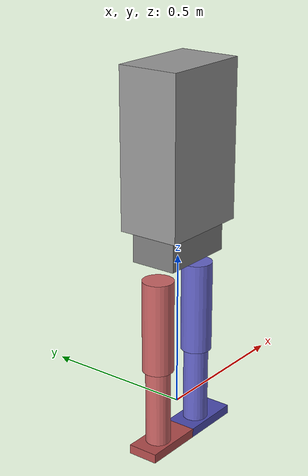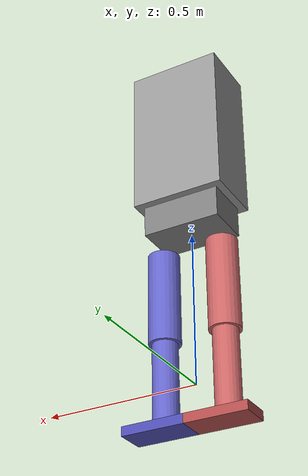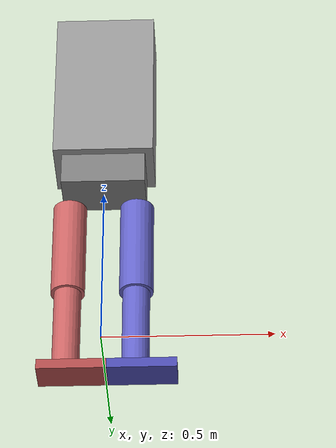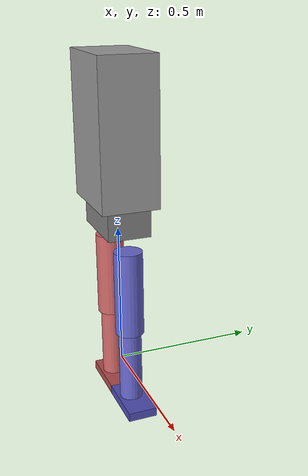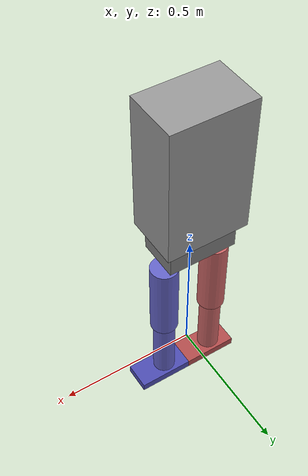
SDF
<?xml version="1.0" ?>
<sdf version="1.9">
  <model name="humanoid_stable">
    <static>false</static>
    <self_collide>false</self_collide>

    <!--
      Initial pose in world frame: X Y Z Roll Pitch Yaw
      Start slightly above ground to let physics settle
    -->
    <pose>0 0 0.85 0 0 0</pose>

    <link name="torso">
      <pose>0 0 0 0 0 0</pose>

      <inertial>
        <!--
          Mass: 20 kg (typical for humanoid torso)
          CoM placed at geometric center of torso
        -->
        <mass>20.0</mass>
        <pose>0 0 0 0 0 0</pose>
        <!--
          Inertia tensor for a box: I = (1/12) × m × (h² + d²)
          Torso dimensions: 0.3m × 0.2m × 0.5m
        -->
        <inertia>
          <ixx>0.4667</ixx>
          <ixy>0.0</ixy>
          <ixz>0.0</ixz>
          <iyy>0.5667</iyy>
          <iyz>0.0</iyz>
          <izz>0.2167</izz>
        </inertia>
      </inertial>

      <collision name="torso_collision">
        <pose>0 0 0 0 0 0</pose>
        <geometry>
          <!--
            Collision geometry: Box (simpler than visual for performance)
            Dimensions: 0.3m wide × 0.2m deep × 0.5m tall
          -->
          <box>
            <size>0.3 0.2 0.5</size>
          </box>
        </geometry>
      </collision>

      <visual name="torso_visual">
        <pose>0 0 0 0 0 0</pose>
        <geometry>
          <box>
            <size>0.3 0.2 0.5</size>
          </box>
        </geometry>
        <material>
          <!-- Gray torso -->
          <ambient>0.5 0.5 0.5 1</ambient>
          <diffuse>0.6 0.6 0.6 1</diffuse>
        </material>
      </visual>
    </link>

    <link name="pelvis">
      <pose>0 0 -0.3 0 0 0</pose>

      <inertial>
        <mass>5.0</mass>
        <pose>0 0 0 0 0 0</pose>
        <inertia>
          <ixx>0.02</ixx>
          <ixy>0.0</ixy>
          <ixz>0.0</ixz>
          <iyy>0.04</iyy>
          <iyz>0.0</iyz>
          <izz>0.04</izz>
        </inertia>
      </inertial>

      <collision name="pelvis_collision">
        <geometry>
          <box>
            <size>0.25 0.15 0.1</size>
          </box>
        </geometry>
      </collision>

      <visual name="pelvis_visual">
        <geometry>
          <box>
            <size>0.25 0.15 0.1</size>
          </box>
        </geometry>
        <material>
          <ambient>0.4 0.4 0.4 1</ambient>
          <diffuse>0.5 0.5 0.5 1</diffuse>
        </material>
      </visual>
    </link>

    <!-- Torso to Pelvis Joint (Fixed for simplicity) -->
    <joint name="torso_to_pelvis" type="fixed">
      <parent>torso</parent>
      <child>pelvis</child>
    </joint>

    <!-- Left Upper Leg (Thigh) -->
    <link name="left_upper_leg">
      <pose>0.1 0 -0.4 0 0 0</pose>

      <inertial>
        <mass>4.0</mass>
        <pose>0 0 -0.15 0 0 0</pose>  <!-- CoM at center of thigh -->
        <inertia>
          <ixx>0.04</ixx>
          <ixy>0.0</ixy>
          <ixz>0.0</ixz>
          <iyy>0.04</iyy>
          <iyz>0.0</iyz>
          <izz>0.005</izz>
        </inertia>
      </inertial>

      <collision name="left_upper_leg_collision">
        <pose>0 0 -0.15 0 0 0</pose>
        <geometry>
          <cylinder>
            <radius>0.05</radius>
            <length>0.3</length>
          </cylinder>
        </geometry>
      </collision>

      <visual name="left_upper_leg_visual">
        <pose>0 0 -0.15 0 0 0</pose>
        <geometry>
          <cylinder>
            <radius>0.05</radius>
            <length>0.3</length>
          </cylinder>
        </geometry>
        <material>
          <ambient>0.3 0.3 0.6 1</ambient>
          <diffuse>0.4 0.4 0.8 1</diffuse>
        </material>
      </visual>
    </link>

    <!-- Left Hip Joint (Pitch - forward/backward swing) -->
    <joint name="left_hip_pitch" type="revolute">
      <parent>pelvis</parent>
      <child>left_upper_leg</child>
      <pose>0 0 0.05 0 0 0</pose>  <!-- Joint at top of thigh -->
      <axis>
        <xyz>0 1 0</xyz>  <!-- Y-axis rotation (pitch) -->
        <limit>
          <!--
            Hip pitch limits:
            -60° to +30° (backward to forward swing)
          -->
          <lower>-1.05</lower>
          <upper>0.52</upper>
          <effort>100</effort>      <!-- Max torque in N·m -->
          <velocity>5.0</velocity>  <!-- Max angular velocity in rad/s -->
        </limit>
        <dynamics>
          <!--
            Damping prevents oscillation, friction adds realism
          -->
          <damping>5.0</damping>
          <friction>0.5</friction>
        </dynamics>
      </axis>
    </joint>

    <!-- Left Lower Leg (Shin) -->
    <link name="left_lower_leg">
      <pose>0.1 0 -0.7 0 0 0</pose>

      <inertial>
        <mass>3.0</mass>
        <pose>0 0 -0.125 0 0 0</pose>
        <inertia>
          <ixx>0.02</ixx>
          <ixy>0.0</ixy>
          <ixz>0.0</ixz>
          <iyy>0.02</iyy>
          <iyz>0.0</iyz>
          <izz>0.003</izz>
        </inertia>
      </inertial>

      <collision name="left_lower_leg_collision">
        <pose>0 0 -0.125 0 0 0</pose>
        <geometry>
          <cylinder>
            <radius>0.04</radius>
            <length>0.25</length>
          </cylinder>
        </geometry>
      </collision>

      <visual name="left_lower_leg_visual">
        <pose>0 0 -0.125 0 0 0</pose>
        <geometry>
          <cylinder>
            <radius>0.04</radius>
            <length>0.25</length>
          </cylinder>
        </geometry>
        <material>
          <ambient>0.3 0.3 0.6 1</ambient>
          <diffuse>0.4 0.4 0.8 1</diffuse>
        </material>
      </visual>
    </link>

    <!-- Left Knee Joint -->
    <joint name="left_knee" type="revolute">
      <parent>left_upper_leg</parent>
      <child>left_lower_leg</child>
      <pose>0 0 0.05 0 0 0</pose>
      <axis>
        <xyz>0 1 0</xyz>  <!-- Y-axis rotation (pitch) -->
        <limit>
          <!--
            Knee only bends backward (0° to -130°)
          -->
          <lower>-2.27</lower>
          <upper>0.0</upper>
          <effort>80</effort>
          <velocity>6.0</velocity>
        </limit>
        <dynamics>
          <damping>4.0</damping>
          <friction>0.3</friction>
        </dynamics>
      </axis>
    </joint>

    <!-- Left Foot -->
    <link name="left_foot">
      <!--
        Foot positioned at bottom of lower leg
        Foot is wide and long for stable support polygon
      -->
      <pose>0.1 0 -0.95 0 0 0</pose>

      <inertial>
        <mass>1.0</mass>
        <pose>0 0 0 0 0 0</pose>
        <inertia>
          <ixx>0.002</ixx>
          <ixy>0.0</ixy>
          <ixz>0.0</ixz>
          <iyy>0.004</iyy>
          <iyz>0.0</iyz>
          <izz>0.005</izz>
        </inertia>
      </inertial>

      <collision name="left_foot_collision">
        <pose>0.02 0 -0.015 0 0 0</pose>  <!-- Slightly forward for balance -->
        <geometry>
          <!--
            Foot dimensions: 0.2m long × 0.1m wide × 0.03m thick
            Large footprint = stable support polygon
          -->
          <box>
            <size>0.2 0.1 0.03</size>
          </box>
        </geometry>
        <!--
          Foot contact surface properties
          Critical for walking stability
        -->
        <surface>
          <friction>
            <ode>
              <mu>0.9</mu>     <!-- High friction for grip -->
              <mu2>0.9</mu2>
            </ode>
          </friction>
          <contact>
            <ode>
              <kp>1e6</kp>     <!-- Stiff contact -->
              <kd>100</kd>     <!-- Some damping -->
            </ode>
          </contact>
        </surface>
      </collision>

      <visual name="left_foot_visual">
        <pose>0.02 0 -0.015 0 0 0</pose>
        <geometry>
          <box>
            <size>0.2 0.1 0.03</size>
          </box>
        </geometry>
        <material>
          <ambient>0.2 0.2 0.5 1</ambient>
          <diffuse>0.3 0.3 0.7 1</diffuse>
        </material>
      </visual>
    </link>

    <!-- Left Ankle Joint (Pitch) -->
    <joint name="left_ankle_pitch" type="revolute">
      <parent>left_lower_leg</parent>
      <child>left_foot</child>
      <pose>0 0 0.015 0 0 0</pose>
      <axis>
        <xyz>0 1 0</xyz>  <!-- Y-axis rotation (pitch) -->
        <limit>
          <!--
            Ankle pitch: -30° to +45° (plantarflexion to dorsiflexion)
          -->
          <lower>-0.52</lower>
          <upper>0.79</upper>
          <effort>60</effort>
          <velocity>4.0</velocity>
        </limit>
        <dynamics>
          <damping>3.0</damping>
          <friction>0.2</friction>
        </dynamics>
      </axis>
    </joint>

    <!--
      ============================================================
      RIGHT LEG (Mirror of left leg)
      ============================================================
    -->

    <!-- Right Upper Leg (Thigh) -->
    <link name="right_upper_leg">
      <pose>-0.1 0 -0.4 0 0 0</pose>

      <inertial>
        <mass>4.0</mass>
        <pose>0 0 -0.15 0 0 0</pose>
        <inertia>
          <ixx>0.04</ixx>
          <ixy>0.0</ixy>
          <ixz>0.0</ixz>
          <iyy>0.04</iyy>
          <iyz>0.0</iyz>
          <izz>0.005</izz>
        </inertia>
      </inertial>

      <collision name="right_upper_leg_collision">
        <pose>0 0 -0.15 0 0 0</pose>
        <geometry>
          <cylinder>
            <radius>0.05</radius>
            <length>0.3</length>
          </cylinder>
        </geometry>
      </collision>

      <visual name="right_upper_leg_visual">
        <pose>0 0 -0.15 0 0 0</pose>
        <geometry>
          <cylinder>
            <radius>0.05</radius>
            <length>0.3</length>
          </cylinder>
        </geometry>
        <material>
          <ambient>0.6 0.3 0.3 1</ambient>
          <diffuse>0.8 0.4 0.4 1</diffuse>
        </material>
      </visual>
    </link>

    <!-- Right Hip Joint (Pitch) -->
    <joint name="right_hip_pitch" type="revolute">
      <parent>pelvis</parent>
      <child>right_upper_leg</child>
      <pose>0 0 0.05 0 0 0</pose>
      <axis>
        <xyz>0 1 0</xyz>
        <limit>
          <lower>-1.05</lower>
          <upper>0.52</upper>
          <effort>100</effort>
          <velocity>5.0</velocity>
        </limit>
        <dynamics>
          <damping>5.0</damping>
          <friction>0.5</friction>
        </dynamics>
      </axis>
    </joint>

    <!-- Right Lower Leg (Shin) -->
    <link name="right_lower_leg">
      <pose>-0.1 0 -0.7 0 0 0</pose>

      <inertial>
        <mass>3.0</mass>
        <pose>0 0 -0.125 0 0 0</pose>
        <inertia>
          <ixx>0.02</ixx>
          <ixy>0.0</ixy>
          <ixz>0.0</ixz>
          <iyy>0.02</iyy>
          <iyz>0.0</iyz>
          <izz>0.003</izz>
        </inertia>
      </inertial>

      <collision name="right_lower_leg_collision">
        <pose>0 0 -0.125 0 0 0</pose>
        <geometry>
          <cylinder>
            <radius>0.04</radius>
            <length>0.25</length>
          </cylinder>
        </geometry>
      </collision>

      <visual name="right_lower_leg_visual">
        <pose>0 0 -0.125 0 0 0</pose>
        <geometry>
          <cylinder>
            <radius>0.04</radius>
            <length>0.25</length>
          </cylinder>
        </geometry>
        <material>
          <ambient>0.6 0.3 0.3 1</ambient>
          <diffuse>0.8 0.4 0.4 1</diffuse>
        </material>
      </visual>
    </link>

    <!-- Right Knee Joint -->
    <joint name="right_knee" type="revolute">
      <parent>right_upper_leg</parent>
      <child>right_lower_leg</child>
      <pose>0 0 0.05 0 0 0</pose>
      <axis>
        <xyz>0 1 0</xyz>
        <limit>
          <lower>-2.27</lower>
          <upper>0.0</upper>
          <effort>80</effort>
          <velocity>6.0</velocity>
        </limit>
        <dynamics>
          <damping>4.0</damping>
          <friction>0.3</friction>
        </dynamics>
      </axis>
    </joint>

    <!-- Right Foot -->
    <link name="right_foot">
      <pose>-0.1 0 -0.95 0 0 0</pose>

      <inertial>
        <mass>1.0</mass>
        <pose>0 0 0 0 0 0</pose>
        <inertia>
          <ixx>0.002</ixx>
          <ixy>0.0</ixy>
          <ixz>0.0</ixz>
          <iyy>0.004</iyy>
          <iyz>0.0</iyz>
          <izz>0.005</izz>
        </inertia>
      </inertial>

      <collision name="right_foot_collision">
        <pose>0.02 0 -0.015 0 0 0</pose>
        <geometry>
          <box>
            <size>0.2 0.1 0.03</size>
          </box>
        </geometry>
        <surface>
          <friction>
            <ode>
              <mu>0.9</mu>
              <mu2>0.9</mu2>
            </ode>
          </friction>
          <contact>
            <ode>
              <kp>1e6</kp>
              <kd>100</kd>
            </ode>
          </contact>
        </surface>
      </collision>

      <visual name="right_foot_visual">
        <pose>0.02 0 -0.015 0 0 0</pose>
        <geometry>
          <box>
            <size>0.2 0.1 0.03</size>
          </box>
        </geometry>
        <material>
          <ambient>0.5 0.2 0.2 1</ambient>
          <diffuse>0.7 0.3 0.3 1</diffuse>
        </material>
      </visual>
    </link>

    <!-- Right Ankle Joint (Pitch) -->
    <joint name="right_ankle_pitch" type="revolute">
      <parent>right_lower_leg</parent>
      <child>right_foot</child>
      <pose>0 0 0.015 0 0 0</pose>
      <axis>
        <xyz>0 1 0</xyz>
        <limit>
          <lower>-0.52</lower>
          <upper>0.79</upper>
          <effort>60</effort>
          <velocity>4.0</velocity>
        </limit>
        <dynamics>
          <damping>3.0</damping>
          <friction>0.2</friction>
        </dynamics>
      </axis>
    </joint>

    <plugin filename="gz-sim-joint-state-publisher-system"
            name="gz::sim::systems::JointStatePublisher">
      <joint_name>left_hip_pitch</joint_name>
      <joint_name>left_knee</joint_name>
      <joint_name>left_ankle_pitch</joint_name>
      <joint_name>right_hip_pitch</joint_name>
      <joint_name>right_knee</joint_name>
      <joint_name>right_ankle_pitch</joint_name>
    </plugin>

  </model>
</sdf>
